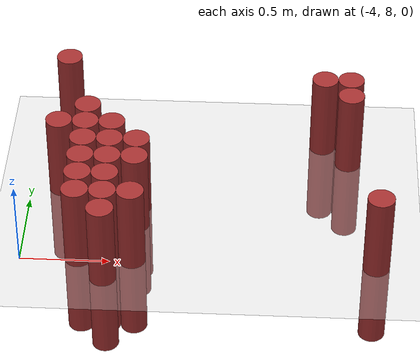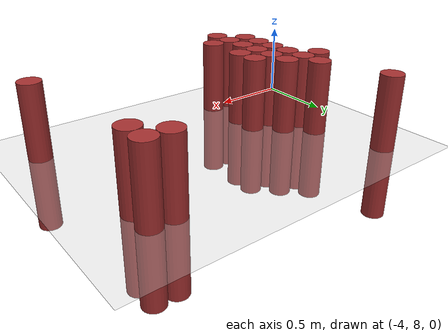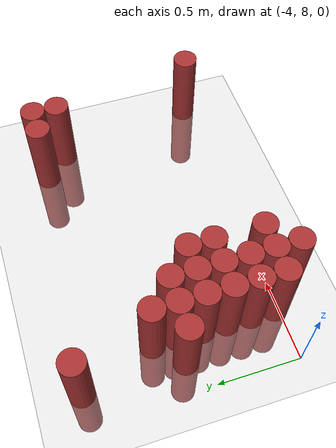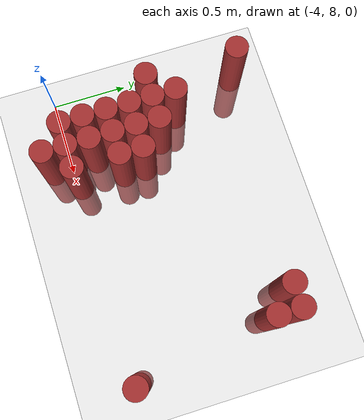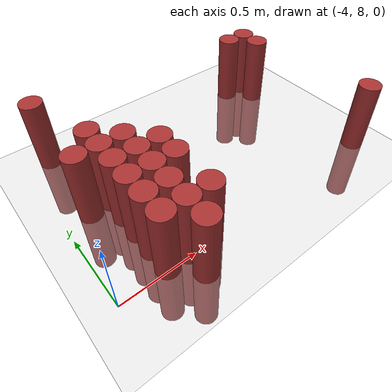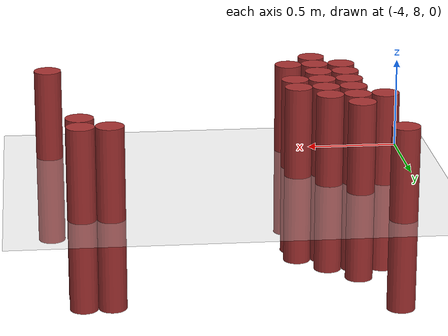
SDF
<sdf version="1.6">
 <world name="default">
  <model name="ground_plane">
   <static>1</static>
   <link name="link">
    <collision name="collision">
     <geometry><plane><normal>0 0 1</normal><size>100 100</size></plane></geometry>
     <surface><friction><ode><mu>100</mu><mu2>50</mu2></ode></friction></surface>
    </collision>
    <visual name="visual">
     <cast_shadows>0</cast_shadows>
     <geometry><plane><normal>0 0 1</normal><size>100 100</size></plane></geometry>
     <material>
      <script><uri>file://media/materials/scripts/gazebo.material</uri><name>Gazebo/Grey</name></script>
     </material>
    </visual>
   </link>
  </model>
  <model name="unit_cylinder_161">
   <static>1</static>
   <pose>-3.825000 8.625000 0.000000 0.000000 0.000000 0.000000</pose>
   <link name="link">
    <inertial>
     <mass>1</mass>
     <inertia><ixx>0.145833</ixx><ixy>0</ixy><ixz>0</ixz><iyy>0.145833</iyy><iyz>0</iyz><izz>0.125</izz></inertia>
    </inertial>
    <collision name="collision">
     <geometry><cylinder><radius>0.075000</radius><length>1</length></cylinder></geometry>
    </collision>
    <visual name="visual">
     <geometry><cylinder><radius>0.075000</radius><length>1</length></cylinder></geometry>
     <material>
      <ambient>0.648000 0.192000 0.192000 1</ambient>
      <diffuse>0.648000 0.192000 0.192000 1</diffuse>
     </material>
     <material>
      <script><name>Gazebo/Grey</name><uri>file://media/materials/scripts/gazebo.material</uri></script>
     </material>
    </visual>
    <sensor name="sensor_contact" type="contact"><contact><collision>collision</collision></contact></sensor>
   </link>
   <plugin filename="gz-sim-touchplugin-system" name="gz::sim::systems::TouchPlugin">
    <target>robot</target>
    <namespace>robot</namespace>
    <time>0.001</time>
    <enabled>true</enabled>
   </plugin>
  </model>
  <model name="unit_cylinder_162">
   <static>1</static>
   <pose>-3.825000 9.225000 0.000000 0.000000 0.000000 0.000000</pose>
   <link name="link">
    <inertial>
     <mass>1</mass>
     <inertia><ixx>0.145833</ixx><ixy>0</ixy><ixz>0</ixz><iyy>0.145833</iyy><iyz>0</iyz><izz>0.125</izz></inertia>
    </inertial>
    <collision name="collision">
     <geometry><cylinder><radius>0.075000</radius><length>1</length></cylinder></geometry>
    </collision>
    <visual name="visual">
     <geometry><cylinder><radius>0.075000</radius><length>1</length></cylinder></geometry>
     <material>
      <ambient>0.648000 0.192000 0.192000 1</ambient>
      <diffuse>0.648000 0.192000 0.192000 1</diffuse>
     </material>
     <material>
      <script><name>Gazebo/Grey</name><uri>file://media/materials/scripts/gazebo.material</uri></script>
     </material>
    </visual>
    <sensor name="sensor_contact" type="contact"><contact><collision>collision</collision></contact></sensor>
   </link>
   <plugin filename="gz-sim-touchplugin-system" name="gz::sim::systems::TouchPlugin">
    <target>robot</target>
    <namespace>robot</namespace>
    <time>0.001</time>
    <enabled>true</enabled>
   </plugin>
  </model>
  <model name="unit_cylinder_165">
   <static>1</static>
   <pose>-3.675000 8.025000 0.000000 0.000000 0.000000 0.000000</pose>
   <link name="link">
    <inertial>
     <mass>1</mass>
     <inertia><ixx>0.145833</ixx><ixy>0</ixy><ixz>0</ixz><iyy>0.145833</iyy><iyz>0</iyz><izz>0.125</izz></inertia>
    </inertial>
    <collision name="collision">
     <geometry><cylinder><radius>0.075000</radius><length>1</length></cylinder></geometry>
    </collision>
    <visual name="visual">
     <geometry><cylinder><radius>0.075000</radius><length>1</length></cylinder></geometry>
     <material>
      <ambient>0.648000 0.192000 0.192000 1</ambient>
      <diffuse>0.648000 0.192000 0.192000 1</diffuse>
     </material>
     <material>
      <script><name>Gazebo/Grey</name><uri>file://media/materials/scripts/gazebo.material</uri></script>
     </material>
    </visual>
    <sensor name="sensor_contact" type="contact"><contact><collision>collision</collision></contact></sensor>
   </link>
   <plugin filename="gz-sim-touchplugin-system" name="gz::sim::systems::TouchPlugin">
    <target>robot</target>
    <namespace>robot</namespace>
    <time>0.001</time>
    <enabled>true</enabled>
   </plugin>
  </model>
  <model name="unit_cylinder_166">
   <static>1</static>
   <pose>-3.675000 8.175000 0.000000 0.000000 0.000000 0.000000</pose>
   <link name="link">
    <inertial>
     <mass>1</mass>
     <inertia><ixx>0.145833</ixx><ixy>0</ixy><ixz>0</ixz><iyy>0.145833</iyy><iyz>0</iyz><izz>0.125</izz></inertia>
    </inertial>
    <collision name="collision">
     <geometry><cylinder><radius>0.075000</radius><length>1</length></cylinder></geometry>
    </collision>
    <visual name="visual">
     <geometry><cylinder><radius>0.075000</radius><length>1</length></cylinder></geometry>
     <material>
      <ambient>0.648000 0.192000 0.192000 1</ambient>
      <diffuse>0.648000 0.192000 0.192000 1</diffuse>
     </material>
     <material>
      <script><name>Gazebo/Grey</name><uri>file://media/materials/scripts/gazebo.material</uri></script>
     </material>
    </visual>
    <sensor name="sensor_contact" type="contact"><contact><collision>collision</collision></contact></sensor>
   </link>
   <plugin filename="gz-sim-touchplugin-system" name="gz::sim::systems::TouchPlugin">
    <target>robot</target>
    <namespace>robot</namespace>
    <time>0.001</time>
    <enabled>true</enabled>
   </plugin>
  </model>
  <model name="unit_cylinder_167">
   <static>1</static>
   <pose>-3.675000 8.325000 0.000000 0.000000 0.000000 0.000000</pose>
   <link name="link">
    <inertial>
     <mass>1</mass>
     <inertia><ixx>0.145833</ixx><ixy>0</ixy><ixz>0</ixz><iyy>0.145833</iyy><iyz>0</iyz><izz>0.125</izz></inertia>
    </inertial>
    <collision name="collision">
     <geometry><cylinder><radius>0.075000</radius><length>1</length></cylinder></geometry>
    </collision>
    <visual name="visual">
     <geometry><cylinder><radius>0.075000</radius><length>1</length></cylinder></geometry>
     <material>
      <ambient>0.648000 0.192000 0.192000 1</ambient>
      <diffuse>0.648000 0.192000 0.192000 1</diffuse>
     </material>
     <material>
      <script><name>Gazebo/Grey</name><uri>file://media/materials/scripts/gazebo.material</uri></script>
     </material>
    </visual>
    <sensor name="sensor_contact" type="contact"><contact><collision>collision</collision></contact></sensor>
   </link>
   <plugin filename="gz-sim-touchplugin-system" name="gz::sim::systems::TouchPlugin">
    <target>robot</target>
    <namespace>robot</namespace>
    <time>0.001</time>
    <enabled>true</enabled>
   </plugin>
  </model>
  <model name="unit_cylinder_168">
   <static>1</static>
   <pose>-3.675000 8.475000 0.000000 0.000000 0.000000 0.000000</pose>
   <link name="link">
    <inertial>
     <mass>1</mass>
     <inertia><ixx>0.145833</ixx><ixy>0</ixy><ixz>0</ixz><iyy>0.145833</iyy><iyz>0</iyz><izz>0.125</izz></inertia>
    </inertial>
    <collision name="collision">
     <geometry><cylinder><radius>0.075000</radius><length>1</length></cylinder></geometry>
    </collision>
    <visual name="visual">
     <geometry><cylinder><radius>0.075000</radius><length>1</length></cylinder></geometry>
     <material>
      <ambient>0.648000 0.192000 0.192000 1</ambient>
      <diffuse>0.648000 0.192000 0.192000 1</diffuse>
     </material>
     <material>
      <script><name>Gazebo/Grey</name><uri>file://media/materials/scripts/gazebo.material</uri></script>
     </material>
    </visual>
    <sensor name="sensor_contact" type="contact"><contact><collision>collision</collision></contact></sensor>
   </link>
   <plugin filename="gz-sim-touchplugin-system" name="gz::sim::systems::TouchPlugin">
    <target>robot</target>
    <namespace>robot</namespace>
    <time>0.001</time>
    <enabled>true</enabled>
   </plugin>
  </model>
  <model name="unit_cylinder_169">
   <static>1</static>
   <pose>-3.675000 8.625000 0.000000 0.000000 0.000000 0.000000</pose>
   <link name="link">
    <inertial>
     <mass>1</mass>
     <inertia><ixx>0.145833</ixx><ixy>0</ixy><ixz>0</ixz><iyy>0.145833</iyy><iyz>0</iyz><izz>0.125</izz></inertia>
    </inertial>
    <collision name="collision">
     <geometry><cylinder><radius>0.075000</radius><length>1</length></cylinder></geometry>
    </collision>
    <visual name="visual">
     <geometry><cylinder><radius>0.075000</radius><length>1</length></cylinder></geometry>
     <material>
      <ambient>0.648000 0.192000 0.192000 1</ambient>
      <diffuse>0.648000 0.192000 0.192000 1</diffuse>
     </material>
     <material>
      <script><name>Gazebo/Grey</name><uri>file://media/materials/scripts/gazebo.material</uri></script>
     </material>
    </visual>
    <sensor name="sensor_contact" type="contact"><contact><collision>collision</collision></contact></sensor>
   </link>
   <plugin filename="gz-sim-touchplugin-system" name="gz::sim::systems::TouchPlugin">
    <target>robot</target>
    <namespace>robot</namespace>
    <time>0.001</time>
    <enabled>true</enabled>
   </plugin>
  </model>
  <model name="unit_cylinder_170">
   <static>1</static>
   <pose>-3.675000 8.775000 0.000000 0.000000 0.000000 0.000000</pose>
   <link name="link">
    <inertial>
     <mass>1</mass>
     <inertia><ixx>0.145833</ixx><ixy>0</ixy><ixz>0</ixz><iyy>0.145833</iyy><iyz>0</iyz><izz>0.125</izz></inertia>
    </inertial>
    <collision name="collision">
     <geometry><cylinder><radius>0.075000</radius><length>1</length></cylinder></geometry>
    </collision>
    <visual name="visual">
     <geometry><cylinder><radius>0.075000</radius><length>1</length></cylinder></geometry>
     <material>
      <ambient>0.648000 0.192000 0.192000 1</ambient>
      <diffuse>0.648000 0.192000 0.192000 1</diffuse>
     </material>
     <material>
      <script><name>Gazebo/Grey</name><uri>file://media/materials/scripts/gazebo.material</uri></script>
     </material>
    </visual>
    <sensor name="sensor_contact" type="contact"><contact><collision>collision</collision></contact></sensor>
   </link>
   <plugin filename="gz-sim-touchplugin-system" name="gz::sim::systems::TouchPlugin">
    <target>robot</target>
    <namespace>robot</namespace>
    <time>0.001</time>
    <enabled>true</enabled>
   </plugin>
  </model>
  <model name="unit_cylinder_174">
   <static>1</static>
   <pose>-3.525000 7.875000 0.000000 0.000000 0.000000 0.000000</pose>
   <link name="link">
    <inertial>
     <mass>1</mass>
     <inertia><ixx>0.145833</ixx><ixy>0</ixy><ixz>0</ixz><iyy>0.145833</iyy><iyz>0</iyz><izz>0.125</izz></inertia>
    </inertial>
    <collision name="collision">
     <geometry><cylinder><radius>0.075000</radius><length>1</length></cylinder></geometry>
    </collision>
    <visual name="visual">
     <geometry><cylinder><radius>0.075000</radius><length>1</length></cylinder></geometry>
     <material>
      <ambient>0.648000 0.192000 0.192000 1</ambient>
      <diffuse>0.648000 0.192000 0.192000 1</diffuse>
     </material>
     <material>
      <script><name>Gazebo/Grey</name><uri>file://media/materials/scripts/gazebo.material</uri></script>
     </material>
    </visual>
    <sensor name="sensor_contact" type="contact"><contact><collision>collision</collision></contact></sensor>
   </link>
   <plugin filename="gz-sim-touchplugin-system" name="gz::sim::systems::TouchPlugin">
    <target>robot</target>
    <namespace>robot</namespace>
    <time>0.001</time>
    <enabled>true</enabled>
   </plugin>
  </model>
  <model name="unit_cylinder_175">
   <static>1</static>
   <pose>-3.525000 8.025000 0.000000 0.000000 0.000000 0.000000</pose>
   <link name="link">
    <inertial>
     <mass>1</mass>
     <inertia><ixx>0.145833</ixx><ixy>0</ixy><ixz>0</ixz><iyy>0.145833</iyy><iyz>0</iyz><izz>0.125</izz></inertia>
    </inertial>
    <collision name="collision">
     <geometry><cylinder><radius>0.075000</radius><length>1</length></cylinder></geometry>
    </collision>
    <visual name="visual">
     <geometry><cylinder><radius>0.075000</radius><length>1</length></cylinder></geometry>
     <material>
      <ambient>0.648000 0.192000 0.192000 1</ambient>
      <diffuse>0.648000 0.192000 0.192000 1</diffuse>
     </material>
     <material>
      <script><name>Gazebo/Grey</name><uri>file://media/materials/scripts/gazebo.material</uri></script>
     </material>
    </visual>
    <sensor name="sensor_contact" type="contact"><contact><collision>collision</collision></contact></sensor>
   </link>
   <plugin filename="gz-sim-touchplugin-system" name="gz::sim::systems::TouchPlugin">
    <target>robot</target>
    <namespace>robot</namespace>
    <time>0.001</time>
    <enabled>true</enabled>
   </plugin>
  </model>
  <model name="unit_cylinder_176">
   <static>1</static>
   <pose>-3.525000 8.175000 0.000000 0.000000 0.000000 0.000000</pose>
   <link name="link">
    <inertial>
     <mass>1</mass>
     <inertia><ixx>0.145833</ixx><ixy>0</ixy><ixz>0</ixz><iyy>0.145833</iyy><iyz>0</iyz><izz>0.125</izz></inertia>
    </inertial>
    <collision name="collision">
     <geometry><cylinder><radius>0.075000</radius><length>1</length></cylinder></geometry>
    </collision>
    <visual name="visual">
     <geometry><cylinder><radius>0.075000</radius><length>1</length></cylinder></geometry>
     <material>
      <ambient>0.648000 0.192000 0.192000 1</ambient>
      <diffuse>0.648000 0.192000 0.192000 1</diffuse>
     </material>
     <material>
      <script><name>Gazebo/Grey</name><uri>file://media/materials/scripts/gazebo.material</uri></script>
     </material>
    </visual>
    <sensor name="sensor_contact" type="contact"><contact><collision>collision</collision></contact></sensor>
   </link>
   <plugin filename="gz-sim-touchplugin-system" name="gz::sim::systems::TouchPlugin">
    <target>robot</target>
    <namespace>robot</namespace>
    <time>0.001</time>
    <enabled>true</enabled>
   </plugin>
  </model>
  <model name="unit_cylinder_177">
   <static>1</static>
   <pose>-3.525000 8.325000 0.000000 0.000000 0.000000 0.000000</pose>
   <link name="link">
    <inertial>
     <mass>1</mass>
     <inertia><ixx>0.145833</ixx><ixy>0</ixy><ixz>0</ixz><iyy>0.145833</iyy><iyz>0</iyz><izz>0.125</izz></inertia>
    </inertial>
    <collision name="collision">
     <geometry><cylinder><radius>0.075000</radius><length>1</length></cylinder></geometry>
    </collision>
    <visual name="visual">
     <geometry><cylinder><radius>0.075000</radius><length>1</length></cylinder></geometry>
     <material>
      <ambient>0.648000 0.192000 0.192000 1</ambient>
      <diffuse>0.648000 0.192000 0.192000 1</diffuse>
     </material>
     <material>
      <script><name>Gazebo/Grey</name><uri>file://media/materials/scripts/gazebo.material</uri></script>
     </material>
    </visual>
    <sensor name="sensor_contact" type="contact"><contact><collision>collision</collision></contact></sensor>
   </link>
   <plugin filename="gz-sim-touchplugin-system" name="gz::sim::systems::TouchPlugin">
    <target>robot</target>
    <namespace>robot</namespace>
    <time>0.001</time>
    <enabled>true</enabled>
   </plugin>
  </model>
  <model name="unit_cylinder_178">
   <static>1</static>
   <pose>-3.525000 8.475000 0.000000 0.000000 0.000000 0.000000</pose>
   <link name="link">
    <inertial>
     <mass>1</mass>
     <inertia><ixx>0.145833</ixx><ixy>0</ixy><ixz>0</ixz><iyy>0.145833</iyy><iyz>0</iyz><izz>0.125</izz></inertia>
    </inertial>
    <collision name="collision">
     <geometry><cylinder><radius>0.075000</radius><length>1</length></cylinder></geometry>
    </collision>
    <visual name="visual">
     <geometry><cylinder><radius>0.075000</radius><length>1</length></cylinder></geometry>
     <material>
      <ambient>0.648000 0.192000 0.192000 1</ambient>
      <diffuse>0.648000 0.192000 0.192000 1</diffuse>
     </material>
     <material>
      <script><name>Gazebo/Grey</name><uri>file://media/materials/scripts/gazebo.material</uri></script>
     </material>
    </visual>
    <sensor name="sensor_contact" type="contact"><contact><collision>collision</collision></contact></sensor>
   </link>
   <plugin filename="gz-sim-touchplugin-system" name="gz::sim::systems::TouchPlugin">
    <target>robot</target>
    <namespace>robot</namespace>
    <time>0.001</time>
    <enabled>true</enabled>
   </plugin>
  </model>
  <model name="unit_cylinder_179">
   <static>1</static>
   <pose>-3.525000 8.625000 0.000000 0.000000 0.000000 0.000000</pose>
   <link name="link">
    <inertial>
     <mass>1</mass>
     <inertia><ixx>0.145833</ixx><ixy>0</ixy><ixz>0</ixz><iyy>0.145833</iyy><iyz>0</iyz><izz>0.125</izz></inertia>
    </inertial>
    <collision name="collision">
     <geometry><cylinder><radius>0.075000</radius><length>1</length></cylinder></geometry>
    </collision>
    <visual name="visual">
     <geometry><cylinder><radius>0.075000</radius><length>1</length></cylinder></geometry>
     <material>
      <ambient>0.648000 0.192000 0.192000 1</ambient>
      <diffuse>0.648000 0.192000 0.192000 1</diffuse>
     </material>
     <material>
      <script><name>Gazebo/Grey</name><uri>file://media/materials/scripts/gazebo.material</uri></script>
     </material>
    </visual>
    <sensor name="sensor_contact" type="contact"><contact><collision>collision</collision></contact></sensor>
   </link>
   <plugin filename="gz-sim-touchplugin-system" name="gz::sim::systems::TouchPlugin">
    <target>robot</target>
    <namespace>robot</namespace>
    <time>0.001</time>
    <enabled>true</enabled>
   </plugin>
  </model>
  <model name="unit_cylinder_185">
   <static>1</static>
   <pose>-3.375000 8.025000 0.000000 0.000000 0.000000 0.000000</pose>
   <link name="link">
    <inertial>
     <mass>1</mass>
     <inertia><ixx>0.145833</ixx><ixy>0</ixy><ixz>0</ixz><iyy>0.145833</iyy><iyz>0</iyz><izz>0.125</izz></inertia>
    </inertial>
    <collision name="collision">
     <geometry><cylinder><radius>0.075000</radius><length>1</length></cylinder></geometry>
    </collision>
    <visual name="visual">
     <geometry><cylinder><radius>0.075000</radius><length>1</length></cylinder></geometry>
     <material>
      <ambient>0.648000 0.192000 0.192000 1</ambient>
      <diffuse>0.648000 0.192000 0.192000 1</diffuse>
     </material>
     <material>
      <script><name>Gazebo/Grey</name><uri>file://media/materials/scripts/gazebo.material</uri></script>
     </material>
    </visual>
    <sensor name="sensor_contact" type="contact"><contact><collision>collision</collision></contact></sensor>
   </link>
   <plugin filename="gz-sim-touchplugin-system" name="gz::sim::systems::TouchPlugin">
    <target>robot</target>
    <namespace>robot</namespace>
    <time>0.001</time>
    <enabled>true</enabled>
   </plugin>
  </model>
  <model name="unit_cylinder_186">
   <static>1</static>
   <pose>-3.375000 8.325000 0.000000 0.000000 0.000000 0.000000</pose>
   <link name="link">
    <inertial>
     <mass>1</mass>
     <inertia><ixx>0.145833</ixx><ixy>0</ixy><ixz>0</ixz><iyy>0.145833</iyy><iyz>0</iyz><izz>0.125</izz></inertia>
    </inertial>
    <collision name="collision">
     <geometry><cylinder><radius>0.075000</radius><length>1</length></cylinder></geometry>
    </collision>
    <visual name="visual">
     <geometry><cylinder><radius>0.075000</radius><length>1</length></cylinder></geometry>
     <material>
      <ambient>0.648000 0.192000 0.192000 1</ambient>
      <diffuse>0.648000 0.192000 0.192000 1</diffuse>
     </material>
     <material>
      <script><name>Gazebo/Grey</name><uri>file://media/materials/scripts/gazebo.material</uri></script>
     </material>
    </visual>
    <sensor name="sensor_contact" type="contact"><contact><collision>collision</collision></contact></sensor>
   </link>
   <plugin filename="gz-sim-touchplugin-system" name="gz::sim::systems::TouchPlugin">
    <target>robot</target>
    <namespace>robot</namespace>
    <time>0.001</time>
    <enabled>true</enabled>
   </plugin>
  </model>
  <model name="unit_cylinder_187">
   <static>1</static>
   <pose>-3.375000 8.475000 0.000000 0.000000 0.000000 0.000000</pose>
   <link name="link">
    <inertial>
     <mass>1</mass>
     <inertia><ixx>0.145833</ixx><ixy>0</ixy><ixz>0</ixz><iyy>0.145833</iyy><iyz>0</iyz><izz>0.125</izz></inertia>
    </inertial>
    <collision name="collision">
     <geometry><cylinder><radius>0.075000</radius><length>1</length></cylinder></geometry>
    </collision>
    <visual name="visual">
     <geometry><cylinder><radius>0.075000</radius><length>1</length></cylinder></geometry>
     <material>
      <ambient>0.648000 0.192000 0.192000 1</ambient>
      <diffuse>0.648000 0.192000 0.192000 1</diffuse>
     </material>
     <material>
      <script><name>Gazebo/Grey</name><uri>file://media/materials/scripts/gazebo.material</uri></script>
     </material>
    </visual>
    <sensor name="sensor_contact" type="contact"><contact><collision>collision</collision></contact></sensor>
   </link>
   <plugin filename="gz-sim-touchplugin-system" name="gz::sim::systems::TouchPlugin">
    <target>robot</target>
    <namespace>robot</namespace>
    <time>0.001</time>
    <enabled>true</enabled>
   </plugin>
  </model>
  <model name="unit_cylinder_194">
   <static>1</static>
   <pose>-2.325000 9.075000 0.000000 0.000000 0.000000 0.000000</pose>
   <link name="link">
    <inertial>
     <mass>1</mass>
     <inertia><ixx>0.145833</ixx><ixy>0</ixy><ixz>0</ixz><iyy>0.145833</iyy><iyz>0</iyz><izz>0.125</izz></inertia>
    </inertial>
    <collision name="collision">
     <geometry><cylinder><radius>0.075000</radius><length>1</length></cylinder></geometry>
    </collision>
    <visual name="visual">
     <geometry><cylinder><radius>0.075000</radius><length>1</length></cylinder></geometry>
     <material>
      <ambient>0.648000 0.192000 0.192000 1</ambient>
      <diffuse>0.648000 0.192000 0.192000 1</diffuse>
     </material>
     <material>
      <script><name>Gazebo/Grey</name><uri>file://media/materials/scripts/gazebo.material</uri></script>
     </material>
    </visual>
    <sensor name="sensor_contact" type="contact"><contact><collision>collision</collision></contact></sensor>
   </link>
   <plugin filename="gz-sim-touchplugin-system" name="gz::sim::systems::TouchPlugin">
    <target>robot</target>
    <namespace>robot</namespace>
    <time>0.001</time>
    <enabled>true</enabled>
   </plugin>
  </model>
  <model name="unit_cylinder_199">
   <static>1</static>
   <pose>-2.175000 8.925000 0.000000 0.000000 0.000000 0.000000</pose>
   <link name="link">
    <inertial>
     <mass>1</mass>
     <inertia><ixx>0.145833</ixx><ixy>0</ixy><ixz>0</ixz><iyy>0.145833</iyy><iyz>0</iyz><izz>0.125</izz></inertia>
    </inertial>
    <collision name="collision">
     <geometry><cylinder><radius>0.075000</radius><length>1</length></cylinder></geometry>
    </collision>
    <visual name="visual">
     <geometry><cylinder><radius>0.075000</radius><length>1</length></cylinder></geometry>
     <material>
      <ambient>0.648000 0.192000 0.192000 1</ambient>
      <diffuse>0.648000 0.192000 0.192000 1</diffuse>
     </material>
     <material>
      <script><name>Gazebo/Grey</name><uri>file://media/materials/scripts/gazebo.material</uri></script>
     </material>
    </visual>
    <sensor name="sensor_contact" type="contact"><contact><collision>collision</collision></contact></sensor>
   </link>
   <plugin filename="gz-sim-touchplugin-system" name="gz::sim::systems::TouchPlugin">
    <target>robot</target>
    <namespace>robot</namespace>
    <time>0.001</time>
    <enabled>true</enabled>
   </plugin>
  </model>
  <model name="unit_cylinder_200">
   <static>1</static>
   <pose>-2.175000 9.075000 0.000000 0.000000 0.000000 0.000000</pose>
   <link name="link">
    <inertial>
     <mass>1</mass>
     <inertia><ixx>0.145833</ixx><ixy>0</ixy><ixz>0</ixz><iyy>0.145833</iyy><iyz>0</iyz><izz>0.125</izz></inertia>
    </inertial>
    <collision name="collision">
     <geometry><cylinder><radius>0.075000</radius><length>1</length></cylinder></geometry>
    </collision>
    <visual name="visual">
     <geometry><cylinder><radius>0.075000</radius><length>1</length></cylinder></geometry>
     <material>
      <ambient>0.648000 0.192000 0.192000 1</ambient>
      <diffuse>0.648000 0.192000 0.192000 1</diffuse>
     </material>
     <material>
      <script><name>Gazebo/Grey</name><uri>file://media/materials/scripts/gazebo.material</uri></script>
     </material>
    </visual>
    <sensor name="sensor_contact" type="contact"><contact><collision>collision</collision></contact></sensor>
   </link>
   <plugin filename="gz-sim-touchplugin-system" name="gz::sim::systems::TouchPlugin">
    <target>robot</target>
    <namespace>robot</namespace>
    <time>0.001</time>
    <enabled>true</enabled>
   </plugin>
  </model>
  <model name="unit_cylinder_207">
   <static>1</static>
   <pose>-2.025000 8.025000 0.000000 0.000000 0.000000 0.000000</pose>
   <link name="link">
    <inertial>
     <mass>1</mass>
     <inertia><ixx>0.145833</ixx><ixy>0</ixy><ixz>0</ixz><iyy>0.145833</iyy><iyz>0</iyz><izz>0.125</izz></inertia>
    </inertial>
    <collision name="collision">
     <geometry><cylinder><radius>0.075000</radius><length>1</length></cylinder></geometry>
    </collision>
    <visual name="visual">
     <geometry><cylinder><radius>0.075000</radius><length>1</length></cylinder></geometry>
     <material>
      <ambient>0.648000 0.192000 0.192000 1</ambient>
      <diffuse>0.648000 0.192000 0.192000 1</diffuse>
     </material>
     <material>
      <script><name>Gazebo/Grey</name><uri>file://media/materials/scripts/gazebo.material</uri></script>
     </material>
    </visual>
    <sensor name="sensor_contact" type="contact"><contact><collision>collision</collision></contact></sensor>
   </link>
   <plugin filename="gz-sim-touchplugin-system" name="gz::sim::systems::TouchPlugin">
    <target>robot</target>
    <namespace>robot</namespace>
    <time>0.001</time>
    <enabled>true</enabled>
   </plugin>
  </model>
 </world>
</sdf>
